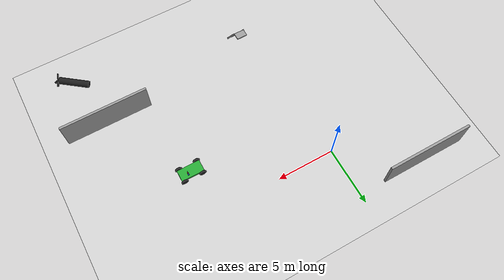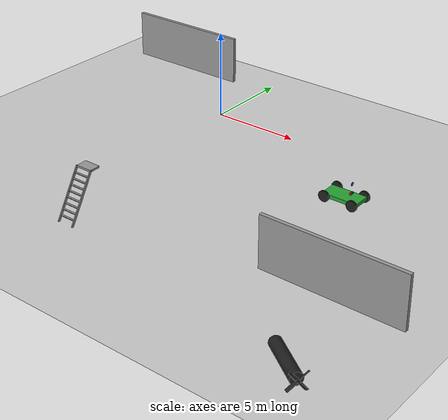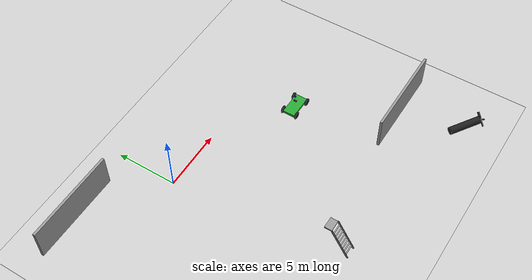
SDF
<sdf version="1.6">
 <world name="default">
  <light name="sun" type="directional">
   <pose>0 0 10 0 -0 0</pose>
   <diffuse>0.8 0.8 0.8 1</diffuse>
   <specular>0.2 0.2 0.2 1</specular>
   <attenuation>
    <range>1000</range>
    <constant>0.9</constant>
    <linear>0.01</linear>
    <quadratic>0.001</quadratic>
   </attenuation>
   <direction>-0.5 0.1 -0.9</direction>
  </light>
  <model name="ground_plane">
   <static>1</static>
   <link name="link">
    <collision name="collision">
     <geometry><plane><normal>0 0 1</normal><size>100 100</size></plane></geometry>
     <surface>
      <contact><collide_bitmask>65535</collide_bitmask></contact>
      <friction><ode><mu>100</mu><mu2>50</mu2></ode></friction>
     </surface>
    </collision>
    <visual name="visual">
     <cast_shadows>0</cast_shadows>
     <geometry><plane><normal>0 0 1</normal><size>100 100</size></plane></geometry>
     <material>
      <script><uri>file://media/materials/scripts/gazebo.material</uri><name>Gazebo/Grey</name></script>
     </material>
    </visual>
   </link>
  </model>
  <gravity>0 0 -9.8</gravity>
  <magnetic_field>6e-06 2.3e-05 -4.2e-05</magnetic_field>
  <atmosphere type="adiabatic"/>
  <physics name="default_physics" default="0" type="ode">
   <max_step_size>0.001</max_step_size>
   <real_time_factor>1</real_time_factor>
   <real_time_update_rate>1000</real_time_update_rate>
  </physics>
  <scene><ambient>0.4 0.4 0.4 1</ambient><background>0.7 0.7 0.7 1</background><shadows>1</shadows></scene>
  <spherical_coordinates>
   <surface_model>EARTH_WGS84</surface_model>
   <latitude_deg>0</latitude_deg>
   <longitude_deg>0</longitude_deg>
   <elevation>0</elevation>
   <heading_deg>0</heading_deg>
  </spherical_coordinates>
  <model name="grey_wall">
   <static>1</static>
   <link name="link">
    <pose>0 0 1.4 0 -0 0</pose>
    <collision name="collision"><geometry><box><size>7.5 0.2 2.8</size></box></geometry></collision>
    <visual name="visual">
     <cast_shadows>0</cast_shadows>
     <geometry><box><size>7.5 0.2 2.8</size></box></geometry>
     <material>
      <script>
       <uri>model://grey_wall/materials/scripts</uri>
       <uri>model://grey_wall/materials/textures</uri>
       <name>vrc/grey_wall</name>
      </script>
     </material>
    </visual>
   </link>
   <pose>-6.07394 4.2576 0 0 -0 0</pose>
  </model>
  <model name="ladder_60deg_0rails">
   <static>1</static>
   <link name="step0">
    <pose>0 0.15396 0.266667 0 -0 0</pose>
    <inertial>
     <mass>9.75482</mass>
     <inertia>
      <ixx>0.00957124</ixx>
      <iyy>0.65963</iyy>
      <izz>0.666842</izz>
      <ixy>0</ixy>
      <ixz>0</ixz>
      <iyz>0</iyz>
     </inertia>
    </inertial>
    <collision name="collision"><geometry><box><size>0.9 0.1016 0.0381</size></box></geometry></collision>
    <visual name="visual">
     <geometry><box><size>0.9 0.1016 0.0381</size></box></geometry>
     <material>
      <script><uri>file://media/materials/scripts/gazebo.material</uri><name>Gazebo/Grey</name></script>
     </material>
    </visual>
   </link>
   <link name="step1">
    <pose>0 0.30792 0.533333 0 -0 0</pose>
    <inertial>
     <mass>9.75482</mass>
     <inertia>
      <ixx>0.00957124</ixx>
      <iyy>0.65963</iyy>
      <izz>0.666842</izz>
      <ixy>0</ixy>
      <ixz>0</ixz>
      <iyz>0</iyz>
     </inertia>
    </inertial>
    <collision name="collision"><geometry><box><size>0.9 0.1016 0.0381</size></box></geometry></collision>
    <visual name="visual">
     <geometry><box><size>0.9 0.1016 0.0381</size></box></geometry>
     <material>
      <script><uri>file://media/materials/scripts/gazebo.material</uri><name>Gazebo/Grey</name></script>
     </material>
    </visual>
   </link>
   <link name="step2">
    <pose>0 0.46188 0.8 0 -0 0</pose>
    <inertial>
     <mass>9.75482</mass>
     <inertia>
      <ixx>0.00957124</ixx>
      <iyy>0.65963</iyy>
      <izz>0.666842</izz>
      <ixy>0</ixy>
      <ixz>0</ixz>
      <iyz>0</iyz>
     </inertia>
    </inertial>
    <collision name="collision"><geometry><box><size>0.9 0.1016 0.0381</size></box></geometry></collision>
    <visual name="visual">
     <geometry><box><size>0.9 0.1016 0.0381</size></box></geometry>
     <material>
      <script><uri>file://media/materials/scripts/gazebo.material</uri><name>Gazebo/Grey</name></script>
     </material>
    </visual>
   </link>
   <link name="step3">
    <pose>0 0.61584 1.06667 0 -0 0</pose>
    <inertial>
     <mass>9.75482</mass>
     <inertia>
      <ixx>0.00957124</ixx>
      <iyy>0.65963</iyy>
      <izz>0.666842</izz>
      <ixy>0</ixy>
      <ixz>0</ixz>
      <iyz>0</iyz>
     </inertia>
    </inertial>
    <collision name="collision"><geometry><box><size>0.9 0.1016 0.0381</size></box></geometry></collision>
    <visual name="visual">
     <geometry><box><size>0.9 0.1016 0.0381</size></box></geometry>
     <material>
      <script><uri>file://media/materials/scripts/gazebo.material</uri><name>Gazebo/Grey</name></script>
     </material>
    </visual>
   </link>
   <link name="step4">
    <pose>0 0.7698 1.33333 0 -0 0</pose>
    <inertial>
     <mass>9.75482</mass>
     <inertia>
      <ixx>0.00957124</ixx>
      <iyy>0.65963</iyy>
      <izz>0.666842</izz>
      <ixy>0</ixy>
      <ixz>0</ixz>
      <iyz>0</iyz>
     </inertia>
    </inertial>
    <collision name="collision"><geometry><box><size>0.9 0.1016 0.0381</size></box></geometry></collision>
    <visual name="visual">
     <geometry><box><size>0.9 0.1016 0.0381</size></box></geometry>
     <material>
      <script><uri>file://media/materials/scripts/gazebo.material</uri><name>Gazebo/Grey</name></script>
     </material>
    </visual>
   </link>
   <link name="step5">
    <pose>0 0.92376 1.6 0 -0 0</pose>
    <inertial>
     <mass>9.75482</mass>
     <inertia>
      <ixx>0.00957124</ixx>
      <iyy>0.65963</iyy>
      <izz>0.666842</izz>
      <ixy>0</ixy>
      <ixz>0</ixz>
      <iyz>0</iyz>
     </inertia>
    </inertial>
    <collision name="collision"><geometry><box><size>0.9 0.1016 0.0381</size></box></geometry></collision>
    <visual name="visual">
     <geometry><box><size>0.9 0.1016 0.0381</size></box></geometry>
     <material>
      <script><uri>file://media/materials/scripts/gazebo.material</uri><name>Gazebo/Grey</name></script>
     </material>
    </visual>
   </link>
   <link name="step6">
    <pose>0 1.07772 1.86667 0 -0 0</pose>
    <inertial>
     <mass>9.75482</mass>
     <inertia>
      <ixx>0.00957124</ixx>
      <iyy>0.65963</iyy>
      <izz>0.666842</izz>
      <ixy>0</ixy>
      <ixz>0</ixz>
      <iyz>0</iyz>
     </inertia>
    </inertial>
    <collision name="collision"><geometry><box><size>0.9 0.1016 0.0381</size></box></geometry></collision>
    <visual name="visual">
     <geometry><box><size>0.9 0.1016 0.0381</size></box></geometry>
     <material>
      <script><uri>file://media/materials/scripts/gazebo.material</uri><name>Gazebo/Grey</name></script>
     </material>
    </visual>
   </link>
   <link name="step7">
    <pose>0 1.23168 2.13333 0 -0 0</pose>
    <inertial>
     <mass>9.75482</mass>
     <inertia>
      <ixx>0.00957124</ixx>
      <iyy>0.65963</iyy>
      <izz>0.666842</izz>
      <ixy>0</ixy>
      <ixz>0</ixz>
      <iyz>0</iyz>
     </inertia>
    </inertial>
    <collision name="collision"><geometry><box><size>0.9 0.1016 0.0381</size></box></geometry></collision>
    <visual name="visual">
     <geometry><box><size>0.9 0.1016 0.0381</size></box></geometry>
     <material>
      <script><uri>file://media/materials/scripts/gazebo.material</uri><name>Gazebo/Grey</name></script>
     </material>
    </visual>
   </link>
   <link name="landing">
    <pose>0 1.68564 2.4 0 -0 0</pose>
    <inertial>
     <mass>57.6072</mass>
     <inertia><ixx>1.73518</ixx><iyy>3.89545</iyy><izz>5.6167</izz><ixy>0</ixy><ixz>0</ixz><iyz>0</iyz></inertia>
    </inertial>
    <collision name="collision"><geometry><box><size>0.9 0.6 0.1016</size></box></geometry></collision>
    <visual name="visual">
     <geometry><box><size>0.9 0.6 0.1016</size></box></geometry>
     <material>
      <script><uri>file://media/materials/scripts/gazebo.material</uri><name>Gazebo/Grey</name></script>
     </material>
    </visual>
   </link>
   <link name="left_side_wall">
    <pose>-0.45 0.69282 1.2 1.0472 -0 0</pose>
    <collision name="collision"><geometry><box><size>0.0508 2.85128 0.13</size></box></geometry></collision>
    <visual name="visual">
     <geometry><box><size>0.0508 2.85128 0.13</size></box></geometry>
     <material>
      <script><uri>file://media/materials/scripts/gazebo.material</uri><name>Gazebo/Grey</name></script>
     </material>
    </visual>
   </link>
   <link name="right_side_wall">
    <pose>0.45 0.69282 1.2 1.0472 -0 0</pose>
    <collision name="collision"><geometry><box><size>0.0508 2.85128 0.13</size></box></geometry></collision>
    <visual name="visual">
     <geometry><box><size>0.0508 2.85128 0.13</size></box></geometry>
     <material>
      <script><uri>file://media/materials/scripts/gazebo.material</uri><name>Gazebo/Grey</name></script>
     </material>
    </visual>
   </link>
   <pose>1.79487 -14.0622 0 0 -0 0</pose>
  </model>
  <model name="submarine_sinking">
   <pose>17.0737 -16.8871 0.449056 1.49014 -0.675017 0.997058</pose>
   <link name="body">
    <pose>0 0 -1.07935 0 -0 0</pose>
    <inertial>
     <mass>1102.7</mass>
     <inertia><ixx>645.998</ixx><ixy>0</ixy><ixz>0</ixz><iyy>645.998</iyy><iyz>0</iyz><izz>49.6215</izz></inertia>
    </inertial>
    <visual name="body_visual">
     <geometry><cylinder><radius>0.3</radius><length>2.6</length></cylinder></geometry>
     <material>
      <script><uri>file://media/materials/scripts/gazebo.material</uri><name>Gazebo/Black</name></script>
     </material>
    </visual>
    <collision name="body_collision">
     <geometry><cylinder><radius>0.3</radius><length>2.6</length></cylinder></geometry>
    </collision>
    <visual name="spacer_visual">
     <pose>0 0 1.37855 0 -0 0</pose>
     <geometry><cylinder><radius>0.0933402</radius><length>0.127211</length></cylinder></geometry>
     <material>
      <script><uri>file://media/materials/scripts/gazebo.material</uri><name>Gazebo/Black</name></script>
     </material>
    </visual>
   </link>
   <link name="propeller">
    <pose>0 0 0.3455 3.14159 -0 0</pose>
    <inertial>
     <mass>25.2312</mass>
     <inertia><ixx>0.531907</ixx><ixy>0</ixy><ixz>0</ixz><iyy>0.531907</iyy><iyz>0</iyz><izz>1.0513</izz></inertia>
    </inertial>
    <visual name="blade1_visual">
     <pose>0.34334 0 0 0.785398 -0 0</pose>
     <geometry><box><size>0.5 0.154178 0.05455</size></box></geometry>
     <material>
      <script><uri>file://media/materials/scripts/gazebo.material</uri><name>Gazebo/Black</name></script>
     </material>
    </visual>
    <collision name="blade1_collision">
     <pose>0.34334 0 0 0.785398 -0 0</pose>
     <geometry><box><size>0.5 0.154178 0.05455</size></box></geometry>
    </collision>
    <visual name="blade2_visual">
     <pose>0 0.34334 0 0.785398 0 1.5708</pose>
     <geometry><box><size>0.5 0.154178 0.05455</size></box></geometry>
     <material>
      <script><uri>file://media/materials/scripts/gazebo.material</uri><name>Gazebo/Black</name></script>
     </material>
    </visual>
    <collision name="blade2_collision">
     <pose>0 0.34334 0 0.785398 0 1.5708</pose>
     <geometry><box><size>0.5 0.154178 0.05455</size></box></geometry>
    </collision>
    <visual name="blade3_visual">
     <pose>-0.34334 -0 0 -0.785398 0 0</pose>
     <geometry><box><size>0.5 0.154178 0.05455</size></box></geometry>
     <material>
      <script><uri>file://media/materials/scripts/gazebo.material</uri><name>Gazebo/Black</name></script>
     </material>
    </visual>
    <collision name="blade3_collision">
     <pose>-0.34334 -0 0 -0.785398 0 0</pose>
     <geometry><box><size>0.5 0.154178 0.05455</size></box></geometry>
    </collision>
    <visual name="blade4_visual">
     <pose>-0 -0.34334 0 -0.785398 -0 1.5708</pose>
     <geometry><box><size>0.5 0.154178 0.05455</size></box></geometry>
     <material>
      <script><uri>file://media/materials/scripts/gazebo.material</uri><name>Gazebo/Black</name></script>
     </material>
    </visual>
    <collision name="blade4_collision">
     <pose>-0 -0.34334 0 -0.785398 -0 1.5708</pose>
     <geometry><box><size>0.5 0.154178 0.05455</size></box></geometry>
    </collision>
   </link>
   <joint name="spinning_joint" type="revolute">
    <parent>body</parent>
    <child>propeller</child>
    <axis>
     <xyz>0 0 1</xyz>
     <use_parent_model_frame>1</use_parent_model_frame>
     <limit><lower>-1e+12</lower><upper>1e+12</upper><effort>-1</effort><velocity>-1</velocity></limit>
     <dynamics><spring_reference>0</spring_reference><spring_stiffness>0</spring_stiffness></dynamics>
    </axis>
   </joint>
   <plugin name="buoyancy" filename="libBuoyancyPlugin.so"><fluid_density>999.1026</fluid_density></plugin>
  </model>
  <model name="car">
   <link name="chassis">
    <pose>0 0 0.3 0 -0 0</pose>
    <collision name="collision"><geometry><box><size>2 1 0.2</size></box></geometry></collision>
    <visual name="visual">
     <geometry><box><size>2 1 0.2</size></box></geometry>
     <material>
      <script><uri>file://media/materials/scripts/gazebo.material</uri><name>Gazebo/Green</name></script>
     </material>
    </visual>
    <inertial>
     <inertia><ixx>1</ixx><ixy>0</ixy><ixz>0</ixz><iyy>1</iyy><iyz>0</iyz><izz>1</izz></inertia>
     <mass>1</mass>
    </inertial>
   </link>
   <link name="front_left_wheel">
    <pose>0.8 0.6 0.3 -0 1.5707 1.5707</pose>
    <collision name="collision">
     <geometry><cylinder><radius>0.3</radius><length>0.1</length></cylinder></geometry>
    </collision>
    <visual name="visual">
     <geometry><cylinder><radius>0.3</radius><length>0.1</length></cylinder></geometry>
     <material>
      <script><uri>file://media/materials/scripts/gazebo.material</uri><name>Gazebo/Black</name></script>
     </material>
    </visual>
    <inertial>
     <inertia><ixx>1</ixx><ixy>0</ixy><ixz>0</ixz><iyy>1</iyy><iyz>0</iyz><izz>1</izz></inertia>
     <mass>1</mass>
    </inertial>
   </link>
   <link name="front_right_wheel">
    <pose>0.8 -0.6 0.3 -0 1.5707 1.5707</pose>
    <collision name="collision">
     <geometry><cylinder><radius>0.3</radius><length>0.1</length></cylinder></geometry>
    </collision>
    <visual name="visual">
     <geometry><cylinder><radius>0.3</radius><length>0.1</length></cylinder></geometry>
     <material>
      <script><uri>file://media/materials/scripts/gazebo.material</uri><name>Gazebo/Black</name></script>
     </material>
    </visual>
    <inertial>
     <inertia><ixx>1</ixx><ixy>0</ixy><ixz>0</ixz><iyy>1</iyy><iyz>0</iyz><izz>1</izz></inertia>
     <mass>1</mass>
    </inertial>
   </link>
   <link name="back_right_wheel">
    <pose>-0.8 -0.6 0.3 -0 1.5707 1.5707</pose>
    <collision name="collision">
     <geometry><cylinder><radius>0.3</radius><length>0.1</length></cylinder></geometry>
    </collision>
    <visual name="visual">
     <geometry><cylinder><radius>0.3</radius><length>0.1</length></cylinder></geometry>
     <material>
      <script><uri>file://media/materials/scripts/gazebo.material</uri><name>Gazebo/Black</name></script>
     </material>
    </visual>
    <inertial>
     <inertia><ixx>1</ixx><ixy>0</ixy><ixz>0</ixz><iyy>1</iyy><iyz>0</iyz><izz>1</izz></inertia>
     <mass>1</mass>
    </inertial>
   </link>
   <link name="back_left_wheel">
    <pose>-0.8 0.6 0.3 -0 1.5707 1.5707</pose>
    <collision name="collision">
     <geometry><cylinder><radius>0.3</radius><length>0.1</length></cylinder></geometry>
    </collision>
    <visual name="visual">
     <geometry><cylinder><radius>0.3</radius><length>0.1</length></cylinder></geometry>
     <material>
      <script><uri>file://media/materials/scripts/gazebo.material</uri><name>Gazebo/Black</name></script>
     </material>
    </visual>
    <inertial>
     <inertia><ixx>1</ixx><ixy>0</ixy><ixz>0</ixz><iyy>1</iyy><iyz>0</iyz><izz>1</izz></inertia>
     <mass>1</mass>
    </inertial>
   </link>
   <link name="gas_pedal">
    <pose>0.3 0.1 0.5 0 -0 0</pose>
    <collision name="collision"><geometry><box><size>0.1 0.1 0.1</size></box></geometry></collision>
    <visual name="visual">
     <geometry><box><size>0.1 0.1 0.1</size></box></geometry>
     <material>
      <script><uri>file://media/materials/scripts/gazebo.material</uri><name>Gazebo/Red</name></script>
     </material>
    </visual>
    <inertial>
     <inertia><ixx>1</ixx><ixy>0</ixy><ixz>0</ixz><iyy>1</iyy><iyz>0</iyz><izz>1</izz></inertia>
     <mass>1</mass>
    </inertial>
   </link>
   <link name="brake_pedal">
    <pose>0.3 0.25 0.5 0 -0 0</pose>
    <collision name="collision"><geometry><box><size>0.1 0.1 0.1</size></box></geometry></collision>
    <visual name="visual">
     <geometry><box><size>0.1 0.1 0.1</size></box></geometry>
     <material>
      <script><uri>file://media/materials/scripts/gazebo.material</uri><name>Gazebo/Blue</name></script>
     </material>
    </visual>
    <inertial>
     <inertia><ixx>1</ixx><ixy>0</ixy><ixz>0</ixz><iyy>1</iyy><iyz>0</iyz><izz>1</izz></inertia>
     <mass>1</mass>
    </inertial>
   </link>
   <link name="steering_wheel">
    <pose>0.3 0.2 1 0 1.5707 0</pose>
    <collision name="collision">
     <geometry><cylinder><radius>0.1</radius><length>0.01</length></cylinder></geometry>
    </collision>
    <visual name="visual">
     <geometry><cylinder><radius>0.1</radius><length>0.01</length></cylinder></geometry>
     <material>
      <script><uri>file://media/materials/scripts/gazebo.material</uri><name>Gazebo/Blue</name></script>
     </material>
    </visual>
    <inertial>
     <inertia><ixx>1</ixx><ixy>0</ixy><ixz>0</ixz><iyy>1</iyy><iyz>0</iyz><izz>1</izz></inertia>
     <mass>1</mass>
    </inertial>
   </link>
   <joint name="gas_joint" type="prismatic">
    <parent>chassis</parent>
    <child>gas_pedal</child>
    <axis>
     <xyz>1 0 0</xyz>
     <limit><lower>0</lower><upper>0.2</upper></limit>
     <use_parent_model_frame>1</use_parent_model_frame>
     <dynamics><spring_reference>0</spring_reference><spring_stiffness>0</spring_stiffness></dynamics>
    </axis>
   </joint>
   <joint name="brake_joint" type="prismatic">
    <parent>chassis</parent>
    <child>brake_pedal</child>
    <axis>
     <xyz>1 0 0</xyz>
     <limit><lower>0</lower><upper>0.2</upper></limit>
     <use_parent_model_frame>1</use_parent_model_frame>
     <dynamics><spring_reference>0</spring_reference><spring_stiffness>0</spring_stiffness></dynamics>
    </axis>
   </joint>
   <joint name="steering_joint" type="revolute">
    <parent>chassis</parent>
    <child>steering_wheel</child>
    <axis>
     <xyz>1 0 0</xyz>
     <limit><lower>-7.853</lower><upper>7.853</upper></limit>
     <use_parent_model_frame>1</use_parent_model_frame>
     <dynamics><spring_reference>0</spring_reference><spring_stiffness>0</spring_stiffness></dynamics>
    </axis>
   </joint>
   <joint name="front_left_joint" type="revolute2">
    <parent>chassis</parent>
    <child>front_left_wheel</child>
    <axis>
     <xyz>0 0 1</xyz>
     <limit><lower>0</lower><upper>0</upper></limit>
     <use_parent_model_frame>1</use_parent_model_frame>
     <dynamics><spring_reference>0</spring_reference><spring_stiffness>0</spring_stiffness></dynamics>
    </axis>
    <axis2>
     <xyz>0 1 0</xyz>
     <use_parent_model_frame>1</use_parent_model_frame>
     <dynamics><spring_reference>0</spring_reference><spring_stiffness>0</spring_stiffness></dynamics>
    </axis2>
    <physics><ode><limit><cfm>0</cfm><erp>0.9</erp></limit></ode></physics>
   </joint>
   <joint name="front_right_joint" type="revolute2">
    <parent>chassis</parent>
    <child>front_right_wheel</child>
    <axis>
     <xyz>0 0 1</xyz>
     <limit><lower>0</lower><upper>0</upper></limit>
     <use_parent_model_frame>1</use_parent_model_frame>
     <dynamics><spring_reference>0</spring_reference><spring_stiffness>0</spring_stiffness></dynamics>
    </axis>
    <axis2>
     <xyz>0 1 0</xyz>
     <use_parent_model_frame>1</use_parent_model_frame>
     <dynamics><spring_reference>0</spring_reference><spring_stiffness>0</spring_stiffness></dynamics>
    </axis2>
    <physics><ode><limit><cfm>0</cfm><erp>0.9</erp></limit></ode></physics>
   </joint>
   <joint name="back_right_joint" type="revolute2">
    <parent>chassis</parent>
    <child>back_right_wheel</child>
    <axis>
     <xyz>0 0 1</xyz>
     <limit><lower>0</lower><upper>0</upper></limit>
     <use_parent_model_frame>1</use_parent_model_frame>
     <dynamics><spring_reference>0</spring_reference><spring_stiffness>0</spring_stiffness></dynamics>
    </axis>
    <axis2>
     <xyz>0 1 0</xyz>
     <use_parent_model_frame>1</use_parent_model_frame>
     <dynamics><spring_reference>0</spring_reference><spring_stiffness>0</spring_stiffness></dynamics>
    </axis2>
    <physics><ode><limit><cfm>0</cfm><erp>0.9</erp></limit></ode></physics>
   </joint>
   <joint name="back_left_joint" type="revolute2">
    <parent>chassis</parent>
    <child>back_left_wheel</child>
    <axis>
     <xyz>0 0 1</xyz>
     <limit><lower>0</lower><upper>0</upper></limit>
     <use_parent_model_frame>1</use_parent_model_frame>
     <dynamics><spring_reference>0</spring_reference><spring_stiffness>0</spring_stiffness></dynamics>
    </axis>
    <axis2>
     <xyz>0 1 0</xyz>
     <use_parent_model_frame>1</use_parent_model_frame>
     <dynamics><spring_reference>0</spring_reference><spring_stiffness>0</spring_stiffness></dynamics>
    </axis2>
    <physics><ode><limit><cfm>0</cfm><erp>0.9</erp></limit></ode></physics>
   </joint>
   <plugin name="vehicle" filename="libVehiclePlugin.so">
    <front_left>front_left_joint</front_left>
    <front_right>front_right_joint</front_right>
    <back_left>back_left_joint</back_left>
    <back_right>back_right_joint</back_right>
    <gas>gas_joint</gas>
    <brake>brake_joint</brake>
    <steering>steering_joint</steering>
    <front_power>10</front_power>
    <rear_power>10</rear_power>
    <tire_angle_range>0.5</tire_angle_range>
    <max_speed>10</max_speed>
    <aero_load>0.1</aero_load>
   </plugin>
   <pose>10.9802 -3.98846 2e-06 1e-06 -1e-06 0.001965</pose>
  </model>
  <model name="grey_wall_0">
   <static>1</static>
   <link name="link">
    <pose>0 0 1.4 0 -0 0</pose>
    <collision name="collision"><geometry><box><size>7.5 0.2 2.8</size></box></geometry></collision>
    <visual name="visual">
     <cast_shadows>0</cast_shadows>
     <geometry><box><size>7.5 0.2 2.8</size></box></geometry>
     <material>
      <script>
       <uri>model://grey_wall/materials/scripts</uri>
       <uri>model://grey_wall/materials/textures</uri>
       <name>vrc/grey_wall</name>
      </script>
     </material>
    </visual>
   </link>
   <pose>14.9672 -11.2822 0 0 -0 0</pose>
  </model>
 </world>
</sdf>
